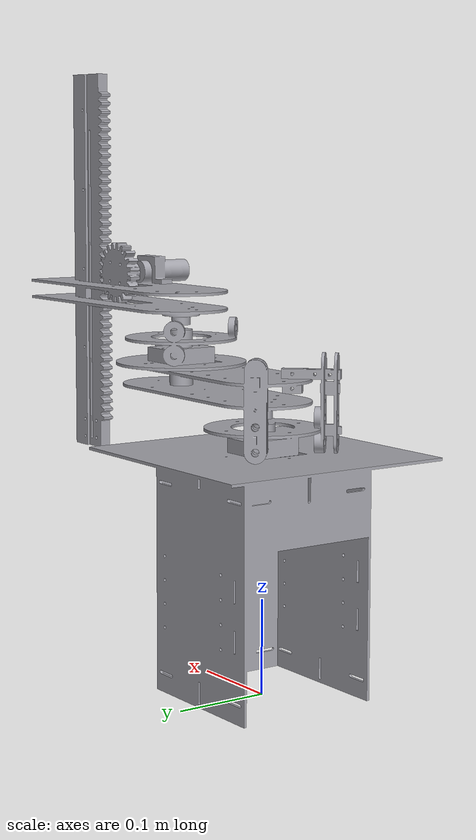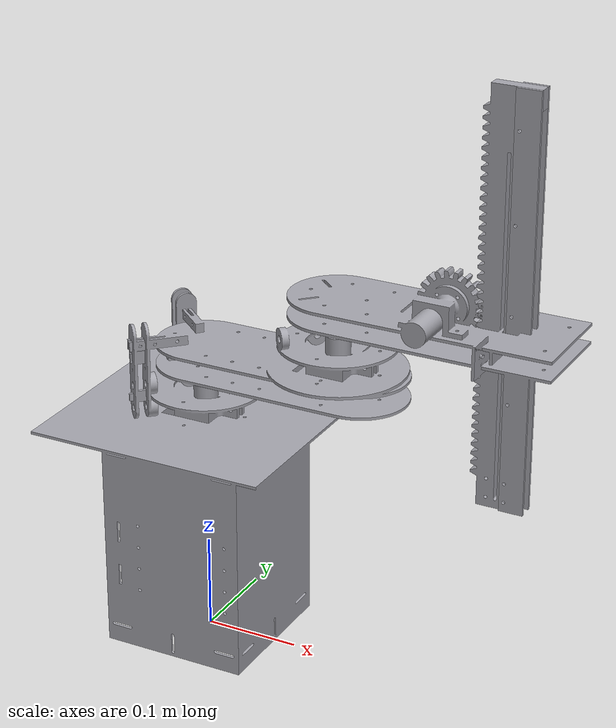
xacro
<?xml version="1.0"?>
<robot xmlns:xacro="http://www.ros.org/wiki/xacro" name="scara">
  <!-- SCARA R-R-P. CAD Y-up converted to ROS/Gazebo Z-up. -->

  <link name="world"/>
  <joint name="world_fixed" type="fixed">
    <parent link="world"/>
    <child link="base_link"/>
    <origin xyz="0 0 0" rpy="0 0 0"/>
  </joint>

  <link name="base_link">
    <visual>
      <origin xyz="0 0 0" rpy="0 0 0"/>
      <geometry><mesh filename="package://scara_description/meshes/base_link.stl" scale="0.001 0.001 0.001"/></geometry>
      <material name="grey"><color rgba="0.65 0.65 0.68 1"/></material>
    </visual>
    <collision>
      <origin xyz="0 0 0" rpy="0 0 0"/>
      <geometry><mesh filename="package://scara_description/meshes/base_link.stl" scale="0.001 0.001 0.001"/></geometry>
    </collision>
    <inertial>
      <origin xyz="0.000000 0.000000 0.149000" rpy="0 0 0"/>
      <mass value="12.0000"/>
      <inertia ixx="0.15434000" ixy="0" ixz="0" iyy="0.15434000" iyz="0" izz="0.13107200"/>
    </inertial>
  </link>

  <link name="link_1">
    <visual>
      <origin xyz="0 0 0" rpy="0 0 0"/>
      <geometry><mesh filename="package://scara_description/meshes/link_1.stl" scale="0.001 0.001 0.001"/></geometry>
      <material name="grey"><color rgba="0.65 0.65 0.68 1"/></material>
    </visual>
    <collision>
      <origin xyz="0 0 0" rpy="0 0 0"/>
      <geometry><mesh filename="package://scara_description/meshes/link_1.stl" scale="0.001 0.001 0.001"/></geometry>
    </collision>
    <inertial>
      <origin xyz="0.079945 0.000000 0.014500" rpy="0 0 0"/>
      <mass value="2.5000"/>
      <inertia ixx="0.00744354" ixy="0" ixz="0" iyy="0.02063577" iyz="0" izz="0.02135890"/>
    </inertial>
  </link>

  <link name="link_2">
    <visual>
      <origin xyz="0 0 0" rpy="0 0 0"/>
      <geometry><mesh filename="package://scara_description/meshes/link_2.stl" scale="0.001 0.001 0.001"/></geometry>
      <material name="grey"><color rgba="0.65 0.65 0.68 1"/></material>
    </visual>
    <collision>
      <origin xyz="0 0 0" rpy="0 0 0"/>
      <geometry><mesh filename="package://scara_description/meshes/link_2.stl" scale="0.001 0.001 0.001"/></geometry>
    </collision>
    <inertial>
      <origin xyz="0.095000 -0.015000 0.043890" rpy="0 0 0"/>
      <mass value="3.0000"/>
      <inertia ixx="0.04915162" ixy="0" ixz="0" iyy="0.06595162" iyz="0" izz="0.02525000"/>
    </inertial>
  </link>

  <link name="link_3">
    <visual>
      <origin xyz="0 0 0" rpy="0 0 0"/>
      <geometry><mesh filename="package://scara_description/meshes/link_3.stl" scale="0.001 0.001 0.001"/></geometry>
      <material name="grey"><color rgba="0.65 0.65 0.68 1"/></material>
    </visual>
    <collision>
      <origin xyz="0 0 0" rpy="0 0 0"/>
      <geometry><mesh filename="package://scara_description/meshes/link_3.stl" scale="0.001 0.001 0.001"/></geometry>
    </collision>
    <inertial>
      <origin xyz="0.025385 0.000000 0.009390" rpy="0 0 0"/>
      <mass value="0.8000"/>
      <inertia ixx="0.01199003" ixy="0" ixz="0" iyy="0.01219620" iyz="0" izz="0.00022536"/>
    </inertial>
  </link>

  <joint name="joint_1" type="revolute">
    <parent link="base_link"/>
    <child link="link_1"/>
    <origin xyz="0.000000 0.000000 0.303000" rpy="0 0 0"/>
    <axis xyz="0 0 1"/>
    <limit lower="-3.14159" upper="3.14159" effort="25" velocity="1.5"/>
    <dynamics damping="0.15" friction="0.02"/>
  </joint>

  <joint name="joint_2" type="revolute">
    <parent link="link_1"/>
    <child link="link_2"/>
    <origin xyz="0.150000 0.000000 0.083000" rpy="0 0 0"/>
    <axis xyz="0 0 1"/>
    <!-- Limite J2 medido por el usuario para evitar auto-colision: +/-1.750 rad = +/-100.27 deg. -->
    <limit lower="-1.750" upper="1.750" effort="20" velocity="1.5"/>
    <dynamics damping="0.15" friction="0.02"/>
  </joint>

  <joint name="joint_3" type="prismatic">
    <parent link="link_2"/>
    <child link="link_3"/>
    <origin xyz="0.146170 0.006000 0.034500" rpy="0 0 0"/>
    <axis xyz="0 0 1"/>
    <limit lower="-0.084" upper="0.084" effort="150" velocity="0.15"/>
    <dynamics damping="1.0" friction="0.1"/>
  </joint>

  <!-- ros2_control para Gazebo Harmonic / ROS 2 Jazzy -->
  <ros2_control name="GazeboSimSystem" type="system">
    <hardware>
      <plugin>gz_ros2_control/GazeboSimSystem</plugin>
    </hardware>
    <joint name="joint_1">
      <command_interface name="position"/>
      <state_interface name="position"/>
      <state_interface name="velocity"/>
      <state_interface name="effort"/>
    </joint>
    <joint name="joint_2">
      <command_interface name="position"/>
      <state_interface name="position"/>
      <state_interface name="velocity"/>
      <state_interface name="effort"/>
    </joint>
    <joint name="joint_3">
      <command_interface name="position"/>
      <state_interface name="position"/>
      <state_interface name="velocity"/>
      <state_interface name="effort"/>
    </joint>
  </ros2_control>

  <gazebo>
    <plugin filename="gz_ros2_control-system" name="gz_ros2_control::GazeboSimROS2ControlPlugin">
      <ros>
       <namespace>scara_description</namespace>
       <remapping>robot_description:=/scara_description/robot_description</remapping>
      </ros>
      <parameters>$(find scara_description)/config/ros2_controllers.yaml</parameters>
    </plugin>
  </gazebo>

  <!-- Habilita auto-colision. Los limites articulares siguen siendo la proteccion principal. -->
  <gazebo reference="base_link"><selfCollide>true</selfCollide></gazebo>
  <gazebo reference="link_1"><selfCollide>true</selfCollide></gazebo>
  <gazebo reference="link_2"><selfCollide>true</selfCollide></gazebo>
  <gazebo reference="link_3"><selfCollide>true</selfCollide></gazebo>
</robot>
